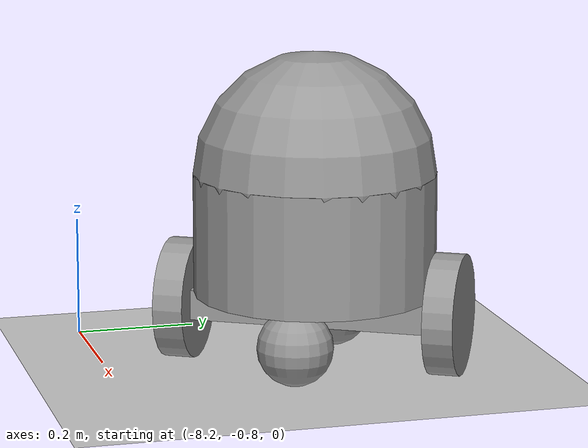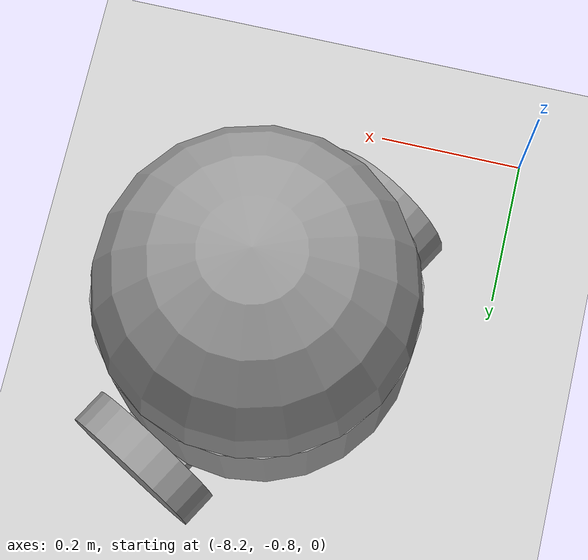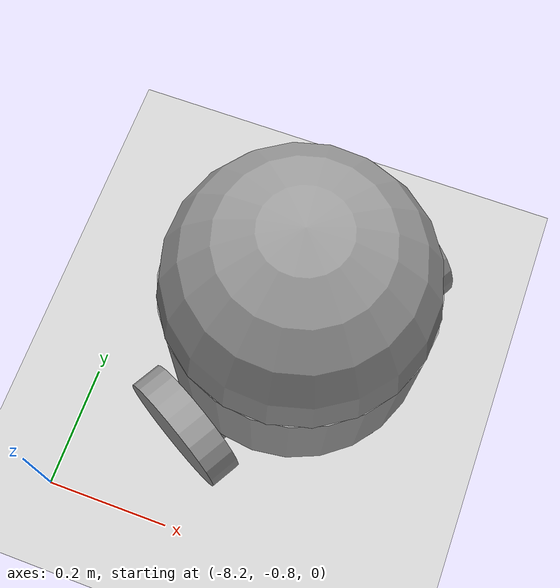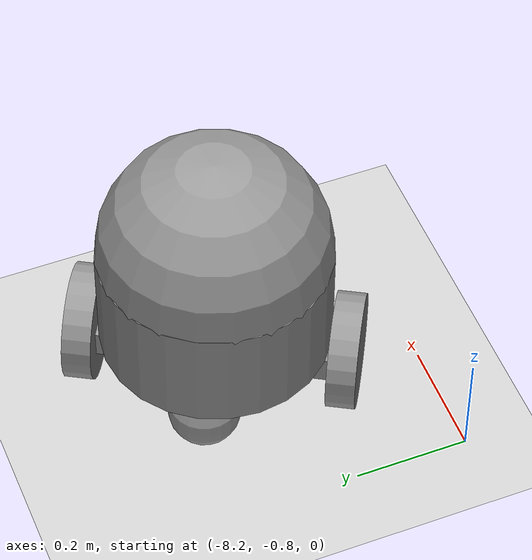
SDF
<sdf version="1.6">
 <world name="default">
  <model name="ground_plane">
   <static>1</static>
   <link name="link">
    <collision name="collision">
     <geometry><plane><normal>0 0 1</normal><size>100 100</size></plane></geometry>
     <surface><friction><ode><mu>100</mu><mu2>50</mu2></ode></friction></surface>
    </collision>
    <visual name="visual">
     <cast_shadows>0</cast_shadows>
     <geometry><plane><normal>0 0 1</normal><size>100 100</size></plane></geometry>
     <material>
      <script><uri>file://media/materials/scripts/gazebo.material</uri><name>Gazebo/Grey</name></script>
     </material>
    </visual>
   </link>
  </model>
  <model name="my_home_robot">
   <plugin name="robot_driver" filename="librobot_driver.so"/>
   <link name="link_0">
    <pose>0 4e-06 -0.039286 0 -0 0</pose>
    <inertial>
     <mass>1</mass>
     <inertia>
      <ixx>0.166667</ixx>
      <ixy>0</ixy>
      <ixz>0</ixz>
      <iyy>0.166667</iyy>
      <iyz>0</iyz>
      <izz>0.166667</izz>
     </inertia>
    </inertial>
    <visual name="visual">
     <geometry><box><size>0.1 0.4 0.05</size></box></geometry>
     <material>
      <lighting>1</lighting>
      <script><uri>file://media/materials/scripts/gazebo.material</uri><name>Gazebo/Grey</name></script>
      <shader type="pixel"><normal_map>__default__</normal_map></shader>
      <ambient>0.3 0.3 0.3 1</ambient>
      <diffuse>0.7 0.7 0.7 1</diffuse>
      <specular>0.01 0.01 0.01 1</specular>
      <emissive>0 0 0 1</emissive>
     </material>
    </visual>
    <collision name="collision">
     <geometry><box><size>0.1 0.4 0.05</size></box></geometry>
     <surface>
      <friction>
       <ode><mu>1</mu><mu2>1</mu2><fdir1>0 0 0</fdir1><slip1>0</slip1><slip2>0</slip2></ode>
       <torsional>
        <coefficient>1</coefficient>
        <patch_radius>0</patch_radius>
        <surface_radius>0</surface_radius>
        <use_patch_radius>1</use_patch_radius>
        <ode><slip>0</slip></ode>
       </torsional>
      </friction>
      <bounce><restitution_coefficient>0</restitution_coefficient><threshold>1e+06</threshold></bounce>
      <contact>
       <collide_without_contact>0</collide_without_contact>
       <collide_without_contact_bitmask>1</collide_without_contact_bitmask>
       <collide_bitmask>1</collide_bitmask>
       <ode>
        <soft_cfm>0</soft_cfm>
        <soft_erp>0.2</soft_erp>
        <kp>1e+13</kp>
        <kd>1</kd>
        <max_vel>0.01</max_vel>
        <min_depth>0</min_depth>
       </ode>
       <bullet>
        <split_impulse>1</split_impulse>
        <split_impulse_penetration_threshold>-0.01</split_impulse_penetration_threshold>
        <soft_cfm>0</soft_cfm>
        <soft_erp>0.2</soft_erp>
        <kp>1e+13</kp>
        <kd>1</kd>
       </bullet>
      </contact>
     </surface>
    </collision>
   </link>
   <link name="link_1">
    <pose>0 -0.225107 -0.039286 1.57 -0 0</pose>
    <inertial>
     <mass>1</mass>
     <inertia><ixx>0.145833</ixx><ixy>0</ixy><ixz>0</ixz><iyy>0.145833</iyy><iyz>0</iyz><izz>0.125</izz></inertia>
    </inertial>
    <visual name="visual">
     <geometry><cylinder><radius>0.1</radius><length>0.05</length></cylinder></geometry>
     <material>
      <lighting>1</lighting>
      <script><uri>file://media/materials/scripts/gazebo.material</uri><name>Gazebo/Grey</name></script>
      <shader type="pixel"><normal_map>__default__</normal_map></shader>
      <ambient>0.3 0.3 0.3 1</ambient>
      <diffuse>0.7 0.7 0.7 1</diffuse>
      <specular>0.01 0.01 0.01 1</specular>
      <emissive>0 0 0 1</emissive>
     </material>
    </visual>
    <collision name="collision">
     <geometry><cylinder><radius>0.1</radius><length>0.05</length></cylinder></geometry>
     <surface>
      <friction>
       <ode><mu>1</mu><mu2>1</mu2><fdir1>0 0 0</fdir1><slip1>0</slip1><slip2>0</slip2></ode>
       <torsional>
        <coefficient>1</coefficient>
        <patch_radius>0</patch_radius>
        <surface_radius>0</surface_radius>
        <use_patch_radius>1</use_patch_radius>
        <ode><slip>0</slip></ode>
       </torsional>
      </friction>
      <bounce><restitution_coefficient>0</restitution_coefficient><threshold>1e+06</threshold></bounce>
      <contact>
       <collide_without_contact>0</collide_without_contact>
       <collide_without_contact_bitmask>1</collide_without_contact_bitmask>
       <collide_bitmask>1</collide_bitmask>
       <ode>
        <soft_cfm>0</soft_cfm>
        <soft_erp>0.2</soft_erp>
        <kp>1e+13</kp>
        <kd>1</kd>
        <max_vel>0.01</max_vel>
        <min_depth>0</min_depth>
       </ode>
       <bullet>
        <split_impulse>1</split_impulse>
        <split_impulse_penetration_threshold>-0.01</split_impulse_penetration_threshold>
        <soft_cfm>0</soft_cfm>
        <soft_erp>0.2</soft_erp>
        <kp>1e+13</kp>
        <kd>1</kd>
       </bullet>
      </contact>
     </surface>
    </collision>
   </link>
   <link name="link_1_clone">
    <pose>0 0.225084 -0.039286 1.57 -0 0</pose>
    <inertial>
     <mass>1</mass>
     <inertia><ixx>0.145833</ixx><ixy>0</ixy><ixz>0</ixz><iyy>0.145833</iyy><iyz>0</iyz><izz>0.125</izz></inertia>
    </inertial>
    <visual name="visual">
     <geometry><cylinder><radius>0.1</radius><length>0.05</length></cylinder></geometry>
     <material>
      <lighting>1</lighting>
      <script><uri>file://media/materials/scripts/gazebo.material</uri><name>Gazebo/Grey</name></script>
      <shader type="pixel"><normal_map>__default__</normal_map></shader>
      <ambient>0.3 0.3 0.3 1</ambient>
      <diffuse>0.7 0.7 0.7 1</diffuse>
      <specular>0.01 0.01 0.01 1</specular>
      <emissive>0 0 0 1</emissive>
     </material>
    </visual>
    <collision name="collision">
     <geometry><cylinder><radius>0.1</radius><length>0.05</length></cylinder></geometry>
     <surface>
      <friction>
       <ode><mu>1</mu><mu2>1</mu2><fdir1>0 0 0</fdir1><slip1>0</slip1><slip2>0</slip2></ode>
       <torsional>
        <coefficient>1</coefficient>
        <patch_radius>0</patch_radius>
        <surface_radius>0</surface_radius>
        <use_patch_radius>1</use_patch_radius>
        <ode><slip>0</slip></ode>
       </torsional>
      </friction>
      <bounce><restitution_coefficient>0</restitution_coefficient><threshold>1e+06</threshold></bounce>
      <contact>
       <collide_without_contact>0</collide_without_contact>
       <collide_without_contact_bitmask>1</collide_without_contact_bitmask>
       <collide_bitmask>1</collide_bitmask>
       <ode>
        <soft_cfm>0</soft_cfm>
        <soft_erp>0.2</soft_erp>
        <kp>1e+13</kp>
        <kd>1</kd>
        <max_vel>0.01</max_vel>
        <min_depth>0</min_depth>
       </ode>
       <bullet>
        <split_impulse>1</split_impulse>
        <split_impulse_penetration_threshold>-0.01</split_impulse_penetration_threshold>
        <soft_cfm>0</soft_cfm>
        <soft_erp>0.2</soft_erp>
        <kp>1e+13</kp>
        <kd>1</kd>
       </bullet>
      </contact>
     </surface>
    </collision>
   </link>
   <link name="link_2">
    <pose>0 4e-06 0.085714 0 -0 0</pose>
    <inertial>
     <mass>1</mass>
     <inertia><ixx>0.145833</ixx><ixy>0</ixy><ixz>0</ixz><iyy>0.145833</iyy><iyz>0</iyz><izz>0.125</izz></inertia>
    </inertial>
    <visual name="visual">
     <geometry><cylinder><radius>0.2</radius><length>0.2</length></cylinder></geometry>
     <material>
      <lighting>1</lighting>
      <script><uri>file://media/materials/scripts/gazebo.material</uri><name>Gazebo/Grey</name></script>
      <shader type="pixel"><normal_map>__default__</normal_map></shader>
      <ambient>0.3 0.3 0.3 1</ambient>
      <diffuse>0.7 0.7 0.7 1</diffuse>
      <specular>0.01 0.01 0.01 1</specular>
      <emissive>0 0 0 1</emissive>
     </material>
    </visual>
    <collision name="collision">
     <geometry><cylinder><radius>0.2</radius><length>0.2</length></cylinder></geometry>
     <surface>
      <friction>
       <ode><mu>1</mu><mu2>1</mu2><fdir1>0 0 0</fdir1><slip1>0</slip1><slip2>0</slip2></ode>
       <torsional>
        <coefficient>1</coefficient>
        <patch_radius>0</patch_radius>
        <surface_radius>0</surface_radius>
        <use_patch_radius>1</use_patch_radius>
        <ode><slip>0</slip></ode>
       </torsional>
      </friction>
      <bounce><restitution_coefficient>0</restitution_coefficient><threshold>1e+06</threshold></bounce>
      <contact>
       <collide_without_contact>0</collide_without_contact>
       <collide_without_contact_bitmask>1</collide_without_contact_bitmask>
       <collide_bitmask>1</collide_bitmask>
       <ode>
        <soft_cfm>0</soft_cfm>
        <soft_erp>0.2</soft_erp>
        <kp>1e+13</kp>
        <kd>1</kd>
        <max_vel>0.01</max_vel>
        <min_depth>0</min_depth>
       </ode>
       <bullet>
        <split_impulse>1</split_impulse>
        <split_impulse_penetration_threshold>-0.01</split_impulse_penetration_threshold>
        <soft_cfm>0</soft_cfm>
        <soft_erp>0.2</soft_erp>
        <kp>1e+13</kp>
        <kd>1</kd>
       </bullet>
      </contact>
     </surface>
    </collision>
   </link>
   <link name="link_3">
    <pose>0 4e-06 0.185714 0 -0 0</pose>
    <inertial>
     <mass>1</mass>
     <inertia><ixx>0.1</ixx><ixy>0</ixy><ixz>0</ixz><iyy>0.1</iyy><iyz>0</iyz><izz>0.1</izz></inertia>
    </inertial>
    <visual name="visual">
     <geometry><sphere><radius>0.2</radius></sphere></geometry>
     <material>
      <lighting>1</lighting>
      <script><uri>file://media/materials/scripts/gazebo.material</uri><name>Gazebo/Grey</name></script>
      <shader type="pixel"><normal_map>__default__</normal_map></shader>
      <ambient>0.3 0.3 0.3 1</ambient>
      <diffuse>0.7 0.7 0.7 1</diffuse>
      <specular>0.01 0.01 0.01 1</specular>
      <emissive>0 0 0 1</emissive>
     </material>
    </visual>
    <collision name="collision">
     <geometry><sphere><radius>0.2</radius></sphere></geometry>
     <surface>
      <friction>
       <ode><mu>1</mu><mu2>1</mu2><fdir1>0 0 0</fdir1><slip1>0</slip1><slip2>0</slip2></ode>
       <torsional>
        <coefficient>1</coefficient>
        <patch_radius>0</patch_radius>
        <surface_radius>0</surface_radius>
        <use_patch_radius>1</use_patch_radius>
        <ode><slip>0</slip></ode>
       </torsional>
      </friction>
      <bounce><restitution_coefficient>0</restitution_coefficient><threshold>1e+06</threshold></bounce>
      <contact>
       <collide_without_contact>0</collide_without_contact>
       <collide_without_contact_bitmask>1</collide_without_contact_bitmask>
       <collide_bitmask>1</collide_bitmask>
       <ode>
        <soft_cfm>0</soft_cfm>
        <soft_erp>0.2</soft_erp>
        <kp>1e+13</kp>
        <kd>1</kd>
        <max_vel>0.01</max_vel>
        <min_depth>0</min_depth>
       </ode>
       <bullet>
        <split_impulse>1</split_impulse>
        <split_impulse_penetration_threshold>-0.01</split_impulse_penetration_threshold>
        <soft_cfm>0</soft_cfm>
        <soft_erp>0.2</soft_erp>
        <kp>1e+13</kp>
        <kd>1</kd>
       </bullet>
      </contact>
     </surface>
    </collision>
   </link>
   <link name="link_4">
    <pose>0.13 4e-06 -0.076786 0 -0 0</pose>
    <inertial>
     <mass>1</mass>
     <inertia><ixx>0.1</ixx><ixy>0</ixy><ixz>0</ixz><iyy>0.1</iyy><iyz>0</iyz><izz>0.1</izz></inertia>
    </inertial>
    <visual name="visual">
     <geometry><sphere><radius>0.0625</radius></sphere></geometry>
     <material>
      <lighting>1</lighting>
      <script><uri>file://media/materials/scripts/gazebo.material</uri><name>Gazebo/Grey</name></script>
      <shader type="pixel"><normal_map>__default__</normal_map></shader>
      <ambient>0.3 0.3 0.3 1</ambient>
      <diffuse>0.7 0.7 0.7 1</diffuse>
      <specular>0.01 0.01 0.01 1</specular>
      <emissive>0 0 0 1</emissive>
     </material>
    </visual>
    <collision name="collision">
     <geometry><sphere><radius>0.0625</radius></sphere></geometry>
     <surface>
      <friction>
       <ode><mu>1</mu><mu2>1</mu2><fdir1>0 0 0</fdir1><slip1>0</slip1><slip2>0</slip2></ode>
       <torsional>
        <coefficient>1</coefficient>
        <patch_radius>0</patch_radius>
        <surface_radius>0</surface_radius>
        <use_patch_radius>1</use_patch_radius>
        <ode><slip>0</slip></ode>
       </torsional>
      </friction>
      <bounce><restitution_coefficient>0</restitution_coefficient><threshold>1e+06</threshold></bounce>
      <contact>
       <collide_without_contact>0</collide_without_contact>
       <collide_without_contact_bitmask>1</collide_without_contact_bitmask>
       <collide_bitmask>1</collide_bitmask>
       <ode>
        <soft_cfm>0</soft_cfm>
        <soft_erp>0.2</soft_erp>
        <kp>1e+13</kp>
        <kd>1</kd>
        <max_vel>0.01</max_vel>
        <min_depth>0</min_depth>
       </ode>
       <bullet>
        <split_impulse>1</split_impulse>
        <split_impulse_penetration_threshold>-0.01</split_impulse_penetration_threshold>
        <soft_cfm>0</soft_cfm>
        <soft_erp>0.2</soft_erp>
        <kp>1e+13</kp>
        <kd>1</kd>
       </bullet>
      </contact>
     </surface>
    </collision>
   </link>
   <link name="link_4_clone">
    <pose>-0.13 4e-06 -0.076786 0 -0 0</pose>
    <inertial>
     <mass>1</mass>
     <inertia><ixx>0.1</ixx><ixy>0</ixy><ixz>0</ixz><iyy>0.1</iyy><iyz>0</iyz><izz>0.1</izz></inertia>
    </inertial>
    <visual name="visual">
     <geometry><sphere><radius>0.0625</radius></sphere></geometry>
     <material>
      <lighting>1</lighting>
      <script><uri>file://media/materials/scripts/gazebo.material</uri><name>Gazebo/Grey</name></script>
      <shader type="pixel"><normal_map>__default__</normal_map></shader>
      <ambient>0.3 0.3 0.3 1</ambient>
      <diffuse>0.7 0.7 0.7 1</diffuse>
      <specular>0.01 0.01 0.01 1</specular>
      <emissive>0 0 0 1</emissive>
     </material>
    </visual>
    <collision name="collision">
     <geometry><sphere><radius>0.0625</radius></sphere></geometry>
     <surface>
      <friction>
       <ode><mu>1</mu><mu2>1</mu2><fdir1>0 0 0</fdir1><slip1>0</slip1><slip2>0</slip2></ode>
       <torsional>
        <coefficient>1</coefficient>
        <patch_radius>0</patch_radius>
        <surface_radius>0</surface_radius>
        <use_patch_radius>1</use_patch_radius>
        <ode><slip>0</slip></ode>
       </torsional>
      </friction>
      <bounce><restitution_coefficient>0</restitution_coefficient><threshold>1e+06</threshold></bounce>
      <contact>
       <collide_without_contact>0</collide_without_contact>
       <collide_without_contact_bitmask>1</collide_without_contact_bitmask>
       <collide_bitmask>1</collide_bitmask>
       <ode>
        <soft_cfm>0</soft_cfm>
        <soft_erp>0.2</soft_erp>
        <kp>1e+13</kp>
        <kd>1</kd>
        <max_vel>0.01</max_vel>
        <min_depth>0</min_depth>
       </ode>
       <bullet>
        <split_impulse>1</split_impulse>
        <split_impulse_penetration_threshold>-0.01</split_impulse_penetration_threshold>
        <soft_cfm>0</soft_cfm>
        <soft_erp>0.2</soft_erp>
        <kp>1e+13</kp>
        <kd>1</kd>
       </bullet>
      </contact>
     </surface>
    </collision>
   </link>
   <joint name="link_0_JOINT_1" type="revolute">
    <parent>link_0</parent>
    <child>link_1</child>
    <axis>
     <xyz>0 0 1</xyz>
     <use_parent_model_frame>0</use_parent_model_frame>
     <limit>
      <lower>-1.79769e+308</lower>
      <upper>1.79769e+308</upper>
      <effort>-1</effort>
      <velocity>-1</velocity>
     </limit>
     <dynamics>
      <spring_reference>0</spring_reference>
      <spring_stiffness>0</spring_stiffness>
      <damping>0</damping>
     </dynamics>
    </axis>
    <physics>
     <ode><limit><cfm>0</cfm><erp>0.2</erp></limit><suspension><cfm>0</cfm><erp>0.2</erp></suspension></ode>
    </physics>
   </joint>
   <joint name="link_0_JOINT_2" type="revolute">
    <parent>link_0</parent>
    <child>link_1_clone</child>
    <axis>
     <xyz>0 0 1</xyz>
     <use_parent_model_frame>0</use_parent_model_frame>
     <limit>
      <lower>-1.79769e+308</lower>
      <upper>1.79769e+308</upper>
      <effort>-1</effort>
      <velocity>-1</velocity>
     </limit>
     <dynamics>
      <spring_reference>0</spring_reference>
      <spring_stiffness>0</spring_stiffness>
      <damping>0</damping>
     </dynamics>
    </axis>
    <physics>
     <ode><limit><cfm>0</cfm><erp>0.2</erp></limit><suspension><cfm>0</cfm><erp>0.2</erp></suspension></ode>
    </physics>
   </joint>
   <joint name="link_0_JOINT_3" type="fixed">
    <parent>link_0</parent>
    <child>link_2</child>
    <physics>
     <ode><limit><cfm>0</cfm><erp>0.2</erp></limit><suspension><cfm>0</cfm><erp>0.2</erp></suspension></ode>
    </physics>
   </joint>
   <joint name="link_2_JOINT_4" type="fixed">
    <parent>link_2</parent>
    <child>link_3</child>
    <physics>
     <ode><limit><cfm>0</cfm><erp>0.2</erp></limit><suspension><cfm>0</cfm><erp>0.2</erp></suspension></ode>
    </physics>
   </joint>
   <joint name="link_2_JOINT_5" type="ball">
    <parent>link_2</parent>
    <child>link_4</child>
    <physics>
     <ode><limit><cfm>0</cfm><erp>0.2</erp></limit><suspension><cfm>0</cfm><erp>0.2</erp></suspension></ode>
    </physics>
   </joint>
   <joint name="link_2_JOINT_6" type="ball">
    <parent>link_2</parent>
    <child>link_4_clone</child>
    <physics>
     <ode><limit><cfm>0</cfm><erp>0.2</erp></limit><suspension><cfm>0</cfm><erp>0.2</erp></suspension></ode>
    </physics>
   </joint>
   <static>0</static>
   <pose>-7.90284 -0.460328 0.139306 1e-06 0.000133 -0.519869</pose>
  </model>
 </world>
</sdf>
